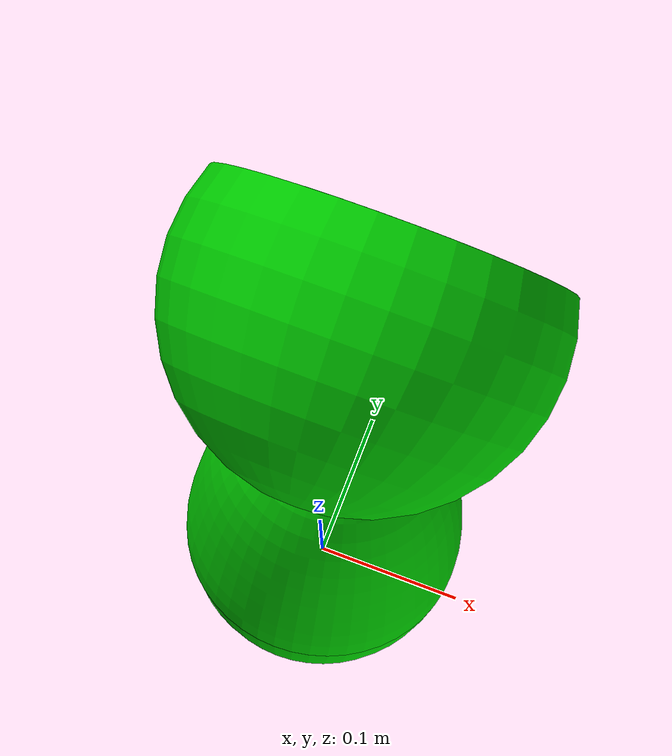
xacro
<?xml version="1.0"?>
<robot xmlns:xacro="http://www.ros.org/wiki/xacro" name="jibo">

    <material name="blue">
        <color rgba="0 0 0.8 1"/>
    </material>
    <material name="red">
        <color rgba="0.8 0 0 1"/>
    </material>
    <material name="green">
        <color rgba="0 0.8 0 1"/>
    </material>

    <gazebo>
        <plugin name="gazebo_ros_control" filename="libgazebo_ros_control.so">
        </plugin>
    </gazebo>

    <link name="base_link">
        <inertial>
            <origin xyz="0 0 0.0" rpy="0 0 0"/>
            <mass value="2" />
            <inertia ixx="0.0116666666667" ixy="0.0" ixz="0.0" iyy="0.0116666666667" iyz="0.0" izz="0.0225"/>
        </inertial>
        <collision>
            <origin xyz="0 0 0" rpy="0 0 0"/>
            <geometry>
                <cylinder radius="0.15" length="0.05"/>
            </geometry>
        </collision>
		<visual>
		    <origin xyz="0 0 0.0" rpy="0 0 0"/>
			<geometry>
				<mesh filename="package://my_jibo_description/models/jibo/meshes/jibo_final_parts_base_v3.dae"/>
			</geometry>
            <material name="blue"/>
		</visual>
	</link>

    <link name="waist_link">
 	    <inertial>
            <origin xyz="0 0 0.00" rpy="0 0 0"/>
            <mass value="2" />
            <inertia ixx="0.0136166666667" ixy="0.0" ixz="0.0" iyy="0.0136166666667" iyz="0.0" izz="0.0256"/>
        </inertial>
        <collision>
            <origin xyz="0 0 0.00" rpy="0 0 0"/>
            <geometry>
                <cylinder radius="0.16" length="0.07"/>
            </geometry>
        </collision>
        <visual>
            <origin rpy="0.0 0 0" xyz="0 0 0.0"/>
            <geometry>
                <mesh filename="package://my_jibo_description/models/jibo/meshes/jibo_final_parts_waist_v3.dae"/>
            </geometry>
            <material name="green"/>
        </visual>
	</link>

    <gazebo reference="waist_link">
        <kp>1000.0</kp>
        <kd>1000.0</kd>
        <mu1>10.0</mu1>
        <mu2>10.0</mu2>
    </gazebo>

    <joint name="base_waist_joint" type="revolute">
    	<parent link="base_link"/>
    	<child link="waist_link"/>
        <origin xyz="0.0 0.0 0.00" rpy="0.0 0.0 0.0"/>
        <limit effort="1.0" lower="-3.1416" upper="3.1416" velocity="0.5"/>
        <axis xyz="0 0 1"/>
	</joint>

    <transmission name="tran1">
        <type>transmission_interface/SimpleTransmission</type>
        <joint name="base_waist_joint">
            <hardwareInterface>EffortJointInterface</hardwareInterface>
        </joint>
        <actuator name="motor1">
            <hardwareInterface>EffortJointInterface</hardwareInterface>
            <mechanicalReduction>1</mechanicalReduction>
        </actuator>
    </transmission>

    <link name="body_link">
 	    <inertial>
            <origin xyz="0 0 0.0" rpy="0 0 0"/>
            <mass value="3" />
            <inertia ixx="0.025275" ixy="0.0" ixz="0.0" iyy="0.025275" iyz="0.0" izz="0.04335"/>
        </inertial>
        <collision>
            <origin xyz="0 0 0.05" rpy="0 0 0"/>
            <geometry>
                <cylinder length="0.17" radius="0.12"/>
            </geometry>
        </collision>
        <visual>
            <origin rpy="0.0 0 0" xyz="0 0 0.05"/>
            <geometry>
                <mesh filename="package://my_jibo_description/models/jibo/meshes/jibo_final_parts_body_v3.dae"/>
            </geometry>
            <material name="green"/>
        </visual>
	</link>

    <joint name="waist_body_joint" type="fixed">
    	<parent link="waist_link"/>
    	<child link="body_link"/>
        <origin xyz="0.0 -0.0095 0.0049" rpy="-0.261799 0.0 0.0"/>
	</joint>

    <link name="head_link">
 	    <inertial>
            <origin xyz="0 0 0.0" rpy="0 0 0"/>
            <mass value="3" />
            <inertia ixx="0.025275" ixy="0.0" ixz="0.0" iyy="0.025275" iyz="0.0" izz="0.04335"/>
        </inertial>
        <collision>
            <origin xyz="0 0 0.05" rpy="0 0 0"/>
            <geometry>
                <cylinder length="0.17" radius="0.12"/>
            </geometry>
        </collision>
        <visual>
            <origin rpy="0.0 0 0" xyz="0 0 0.05"/>
            <geometry>
                <mesh filename="package://my_jibo_description/models/jibo/meshes/jibo_final_parts_head_v5.dae"/>
            </geometry>
            <material name="green"/>
        </visual>
	</link>

    <joint name="head_body_joint" type="continuous">
    	<parent link="body_link"/>
    	<child link="head_link"/>
        <origin xyz="0.0 0.0 0.261799" rpy="-0.015708 0.0 0"/>
        <limit effort="1.0" velocity="0.5"/>
        <axis xyz="0 0 1"/>
	</joint>

</robot>
